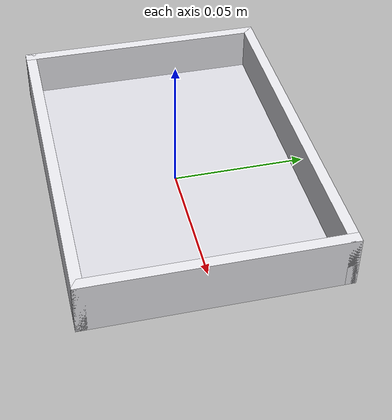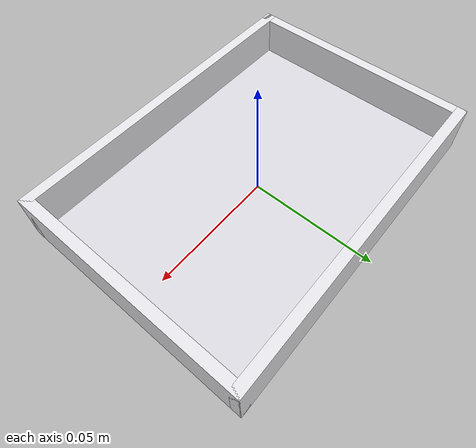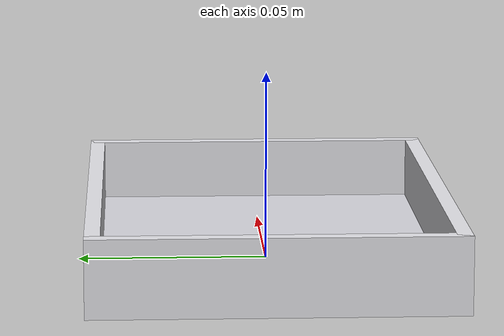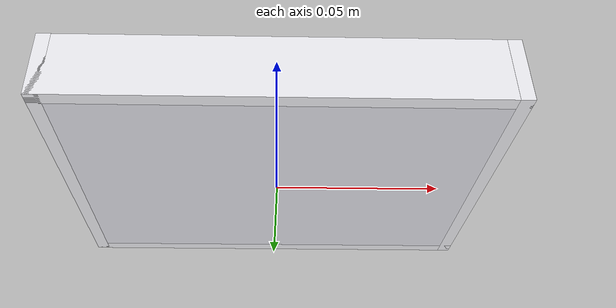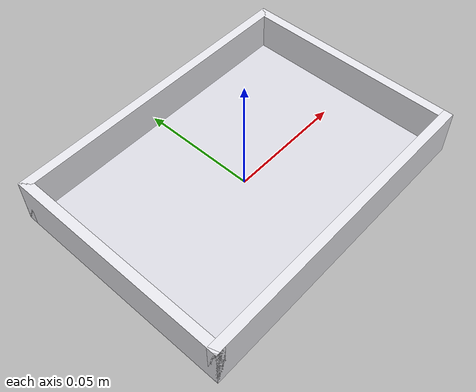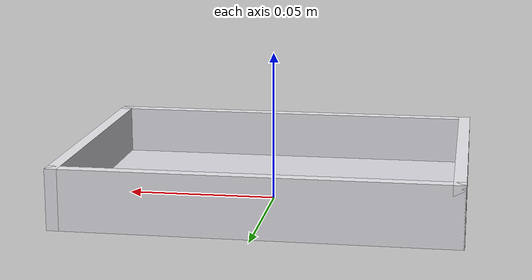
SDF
<?xml version="1.0" ?>
<sdf version="1.7">
  <model name="sample_tray">
    <static>true</static>
    <link name="link">

      <collision name="col_floor">
        <pose>0 0 0.00200 0 0 0</pose>
        <geometry><box><size>0.12200 0.08700 0.00400</size></box></geometry>
        <surface><friction><ode><mu>0.9</mu><mu2>0.9</mu2></ode></friction></surface>
      </collision>
      <visual name="vis_floor">
        <pose>0 0 0.00200 0 0 0</pose>
        <geometry><box><size>0.12200 0.08700 0.00400</size></box></geometry>
        <material><ambient>0.85 0.85 0.88 1</ambient><diffuse>0.85 0.85 0.88 1</diffuse></material>
      </visual>

      <collision name="col_wall_x_pos">
        <pose>0.06300 0.00000 0.01000 0 0 0</pose>
        <geometry><box><size>0.00400 0.09500 0.02000</size></box></geometry>
        <surface><friction><ode><mu>0.9</mu><mu2>0.9</mu2></ode></friction></surface>
      </collision>
      <visual name="vis_wall_x_pos">
        <pose>0.06300 0.00000 0.01000 0 0 0</pose>
        <geometry><box><size>0.00400 0.09500 0.02000</size></box></geometry>
        <material><ambient>0.90 0.90 0.92 1</ambient><diffuse>0.90 0.90 0.92 1</diffuse></material>
      </visual>
      <collision name="col_wall_x_neg">
        <pose>-0.06300 0.00000 0.01000 0 0 0</pose>
        <geometry><box><size>0.00400 0.09500 0.02000</size></box></geometry>
        <surface><friction><ode><mu>0.9</mu><mu2>0.9</mu2></ode></friction></surface>
      </collision>
      <visual name="vis_wall_x_neg">
        <pose>-0.06300 0.00000 0.01000 0 0 0</pose>
        <geometry><box><size>0.00400 0.09500 0.02000</size></box></geometry>
        <material><ambient>0.90 0.90 0.92 1</ambient><diffuse>0.90 0.90 0.92 1</diffuse></material>
      </visual>
      <collision name="col_wall_y_pos">
        <pose>0.00000 0.04550 0.01000 0 0 0</pose>
        <geometry><box><size>0.13000 0.00400 0.02000</size></box></geometry>
        <surface><friction><ode><mu>0.9</mu><mu2>0.9</mu2></ode></friction></surface>
      </collision>
      <visual name="vis_wall_y_pos">
        <pose>0.00000 0.04550 0.01000 0 0 0</pose>
        <geometry><box><size>0.13000 0.00400 0.02000</size></box></geometry>
        <material><ambient>0.90 0.90 0.92 1</ambient><diffuse>0.90 0.90 0.92 1</diffuse></material>
      </visual>
      <collision name="col_wall_y_neg">
        <pose>0.00000 -0.04550 0.01000 0 0 0</pose>
        <geometry><box><size>0.13000 0.00400 0.02000</size></box></geometry>
        <surface><friction><ode><mu>0.9</mu><mu2>0.9</mu2></ode></friction></surface>
      </collision>
      <visual name="vis_wall_y_neg">
        <pose>0.00000 -0.04550 0.01000 0 0 0</pose>
        <geometry><box><size>0.13000 0.00400 0.02000</size></box></geometry>
        <material><ambient>0.90 0.90 0.92 1</ambient><diffuse>0.90 0.90 0.92 1</diffuse></material>
      </visual>
    </link>
  </model>
</sdf>
